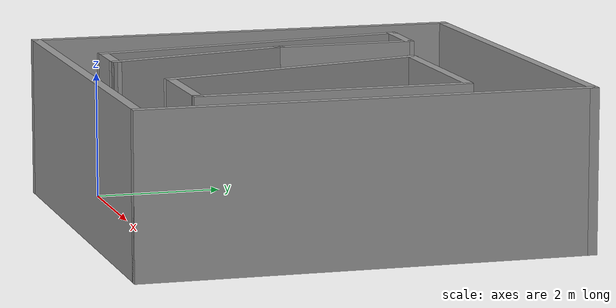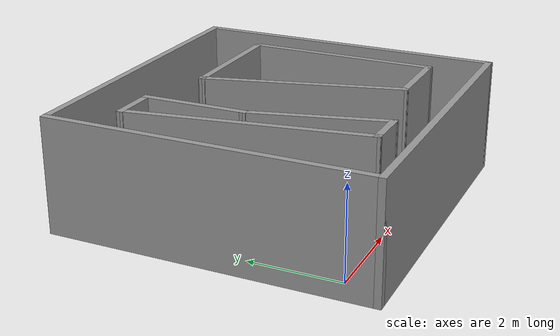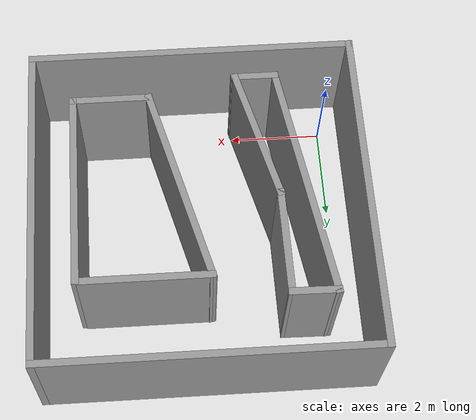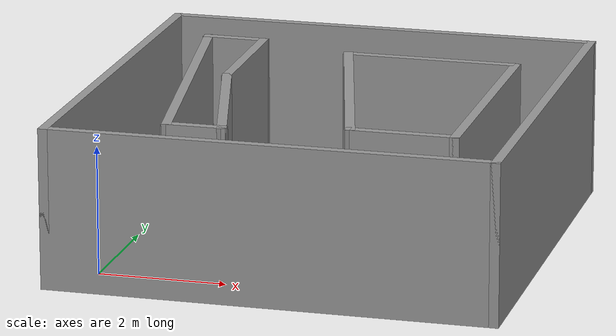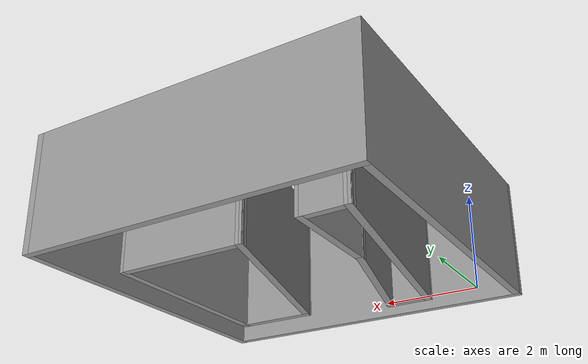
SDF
<?xml version='1.0'?>
<sdf version='1.7'>
  <model name='like_maze_map4'>
    <pose>2.885 2.575 0 0 -0 0</pose>
    <link name='Wall_0'>
      <collision name='Wall_0_Collision'>
        <geometry>
          <box>
            <size>7 0.15 2.5</size>
          </box>
        </geometry>
        <pose>0 0 1.25 0 -0 0</pose>
      </collision>
      <visual name='Wall_0_Visual'>
        <pose>0 0 1.25 0 -0 0</pose>
        <geometry>
          <box>
            <size>7 0.15 2.5</size>
          </box>
        </geometry>
        <material>
          <script>
            <uri>file://media/materials/scripts/gazebo.material</uri>
            <name>Gazebo/Grey</name>
          </script>
          <ambient>1 1 1 1</ambient>
        </material>
        <meta>
          <layer>0</layer>
        </meta>
      </visual>
      <pose>0 -3.425 0 0 -0 0</pose>
    </link>
    <link name='Wall_17'>
      <collision name='Wall_17_Collision'>
        <geometry>
          <box>
            <size>5.19792 0.15 2.5</size>
          </box>
        </geometry>
        <pose>0 0 1.25 0 -0 0</pose>
      </collision>
      <visual name='Wall_17_Visual'>
        <pose>0 0 1.25 0 -0 0</pose>
        <geometry>
          <box>
            <size>5.19792 0.15 2.5</size>
          </box>
        </geometry>
        <material>
          <script>
            <uri>file://media/materials/scripts/gazebo.material</uri>
            <name>Gazebo/Grey</name>
          </script>
          <ambient>1 1 1 1</ambient>
        </material>
        <meta>
          <layer>0</layer>
        </meta>
      </visual>
      <pose>-2.15524 -0.225475 0 0 -0 -1.40773</pose>
    </link>
    <link name='Wall_19'>
      <collision name='Wall_19_Collision'>
        <geometry>
          <box>
            <size>1 0.15 2.5</size>
          </box>
        </geometry>
        <pose>0 0 1.25 0 -0 0</pose>
      </collision>
      <visual name='Wall_19_Visual'>
        <pose>0 0 1.25 0 -0 0</pose>
        <geometry>
          <box>
            <size>1 0.15 2.5</size>
          </box>
        </geometry>
        <material>
          <script>
            <uri>file://media/materials/scripts/gazebo.material</uri>
            <name>Gazebo/Grey</name>
          </script>
          <ambient>1 1 1 1</ambient>
        </material>
        <meta>
          <layer>0</layer>
        </meta>
      </visual>
      <pose>-1.32049 -2.71595 0 0 -0 0</pose>
    </link>
    <link name='Wall_2'>
      <collision name='Wall_2_Collision'>
        <geometry>
          <box>
            <size>7 0.15 2.5</size>
          </box>
        </geometry>
        <pose>0 0 1.25 0 -0 0</pose>
      </collision>
      <visual name='Wall_2_Visual'>
        <pose>0 0 1.25 0 -0 0</pose>
        <geometry>
          <box>
            <size>7 0.15 2.5</size>
          </box>
        </geometry>
        <material>
          <script>
            <uri>file://media/materials/scripts/gazebo.material</uri>
            <name>Gazebo/Grey</name>
          </script>
          <ambient>1 1 1 1</ambient>
        </material>
        <meta>
          <layer>0</layer>
        </meta>
      </visual>
      <pose>-3.425 -0 0 0 -0 1.5708</pose>
    </link>
    <link name='Wall_20'>
      <collision name='Wall_20_Collision'>
        <geometry>
          <box>
            <size>3.04649 0.15 2.5</size>
          </box>
        </geometry>
        <pose>0 0 1.25 0 -0 0</pose>
      </collision>
      <visual name='Wall_20_Visual'>
        <pose>0 0 1.25 0 -0 0</pose>
        <geometry>
          <box>
            <size>3.04649 0.15 2.5</size>
          </box>
        </geometry>
        <material>
          <script>
            <uri>file://media/materials/scripts/gazebo.material</uri>
            <name>Gazebo/Grey</name>
          </script>
          <ambient>1 1 1 1</ambient>
        </material>
        <meta>
          <layer>0</layer>
        </meta>
      </visual>
      <pose>-1.26171 -1.31477 0 0 -0 1.82644</pose>
    </link>
    <link name='Wall_21'>
      <collision name='Wall_21_Collision'>
        <geometry>
          <box>
            <size>2.31553 0.15 2.5</size>
          </box>
        </geometry>
        <pose>0 0 1.25 0 -0 0</pose>
      </collision>
      <visual name='Wall_21_Visual'>
        <pose>0 0 1.25 0 -0 0</pose>
        <geometry>
          <box>
            <size>2.31553 0.15 2.5</size>
          </box>
        </geometry>
        <material>
          <script>
            <uri>file://media/materials/scripts/gazebo.material</uri>
            <name>Gazebo/Grey</name>
          </script>
          <ambient>1 1 1 1</ambient>
        </material>
        <meta>
          <layer>0</layer>
        </meta>
      </visual>
      <pose>-1.63978 1.16911 0 0 -0 1.58174</pose>
    </link>
    <link name='Wall_24'>
      <collision name='Wall_24_Collision'>
        <geometry>
          <box>
            <size>1.06346 0.15 2.5</size>
          </box>
        </geometry>
        <pose>0 0 1.25 0 -0 0</pose>
      </collision>
      <visual name='Wall_24_Visual'>
        <pose>0 0 1.25 0 -0 0</pose>
        <geometry>
          <box>
            <size>1.06346 0.15 2.5</size>
          </box>
        </geometry>
        <material>
          <script>
            <uri>file://media/materials/scripts/gazebo.material</uri>
            <name>Gazebo/Grey</name>
          </script>
          <ambient>1 1 1 1</ambient>
        </material>
        <meta>
          <layer>0</layer>
        </meta>
      </visual>
      <pose>-2.10832 2.2584 0 0 -0 -0.014442</pose>
    </link>
    <link name='Wall_32'>
      <collision name='Wall_32_Collision'>
        <geometry>
          <box>
            <size>2.75 0.15 2.5</size>
          </box>
        </geometry>
        <pose>0 0 1.25 0 -0 0</pose>
      </collision>
      <visual name='Wall_32_Visual'>
        <pose>0 0 1.25 0 -0 0</pose>
        <geometry>
          <box>
            <size>2.75 0.15 2.5</size>
          </box>
        </geometry>
        <material>
          <script>
            <uri>file://media/materials/scripts/gazebo.material</uri>
            <name>Gazebo/Grey</name>
          </script>
          <ambient>1 1 1 1</ambient>
        </material>
        <meta>
          <layer>0</layer>
        </meta>
      </visual>
      <pose>1.16832 1.8 0 0 -0 3.14159</pose>
    </link>
    <link name='Wall_4'>
      <collision name='Wall_4_Collision'>
        <geometry>
          <box>
            <size>7 0.15 2.5</size>
          </box>
        </geometry>
        <pose>0 0 1.25 0 -0 0</pose>
      </collision>
      <visual name='Wall_4_Visual'>
        <pose>0 0 1.25 0 -0 0</pose>
        <geometry>
          <box>
            <size>7 0.15 2.5</size>
          </box>
        </geometry>
        <material>
          <script>
            <uri>file://media/materials/scripts/gazebo.material</uri>
            <name>Gazebo/Grey</name>
          </script>
          <ambient>1 1 1 1</ambient>
        </material>
        <meta>
          <layer>0</layer>
        </meta>
      </visual>
      <pose>3.425 -0 0 0 -0 1.5708</pose>
    </link>
    <link name='Wall_41'>
      <collision name='Wall_41_Collision'>
        <geometry>
          <box>
            <size>4.25 0.15 2.5</size>
          </box>
        </geometry>
        <pose>0 0 1.25 0 -0 0</pose>
      </collision>
      <visual name='Wall_41_Visual'>
        <pose>0 0 1.25 0 -0 0</pose>
        <geometry>
          <box>
            <size>4.25 0.15 2.5</size>
          </box>
        </geometry>
        <material>
          <script>
            <uri>file://media/materials/scripts/gazebo.material</uri>
            <name>Gazebo/Grey</name>
          </script>
          <ambient>1 1 1 1</ambient>
        </material>
        <meta>
          <layer>0</layer>
        </meta>
      </visual>
      <pose>2.56089 -0.267492 0 0 -0 1.5708</pose>
    </link>
    <link name='Wall_43'>
      <collision name='Wall_43_Collision'>
        <geometry>
          <box>
            <size>1.75 0.15 2.5</size>
          </box>
        </geometry>
        <pose>0 0 1.25 0 -0 0</pose>
      </collision>
      <visual name='Wall_43_Visual'>
        <pose>0 0 1.25 0 -0 0</pose>
        <geometry>
          <box>
            <size>1.75 0.15 2.5</size>
          </box>
        </geometry>
        <material>
          <script>
            <uri>file://media/materials/scripts/gazebo.material</uri>
            <name>Gazebo/Grey</name>
          </script>
          <ambient>1 1 1 1</ambient>
        </material>
        <meta>
          <layer>0</layer>
        </meta>
      </visual>
      <pose>1.76089 -2.31749 0 0 -0 3.14159</pose>
    </link>
    <link name='Wall_47'>
      <collision name='Wall_47_Collision'>
        <geometry>
          <box>
            <size>4.40998 0.15 2.5</size>
          </box>
        </geometry>
        <pose>0 0 1.25 0 -0 0</pose>
      </collision>
      <visual name='Wall_47_Visual'>
        <pose>0 0 1.25 0 -0 0</pose>
        <geometry>
          <box>
            <size>4.40998 0.15 2.5</size>
          </box>
        </geometry>
        <material>
          <script>
            <uri>file://media/materials/scripts/gazebo.material</uri>
            <name>Gazebo/Grey</name>
          </script>
          <ambient>1 1 1 1</ambient>
        </material>
        <meta>
          <layer>0</layer>
        </meta>
      </visual>
      <pose>0.414606 -0.258748 0 0 -0 -1.31142</pose>
    </link>
    <link name='Wall_5'>
      <collision name='Wall_5_Collision'>
        <geometry>
          <box>
            <size>7 0.15 2.5</size>
          </box>
        </geometry>
        <pose>0 0 1.25 0 -0 0</pose>
      </collision>
      <visual name='Wall_5_Visual'>
        <pose>0 0 1.25 0 -0 0</pose>
        <geometry>
          <box>
            <size>7 0.15 2.5</size>
          </box>
        </geometry>
        <material>
          <script>
            <uri>file://media/materials/scripts/gazebo.material</uri>
            <name>Gazebo/Grey</name>
          </script>
          <ambient>1 1 1 1</ambient>
        </material>
        <meta>
          <layer>0</layer>
        </meta>
      </visual>
      <pose>0 3.425 0 0 -0 3.14159</pose>
    </link>
    <static>1</static>
  </model>
</sdf>
